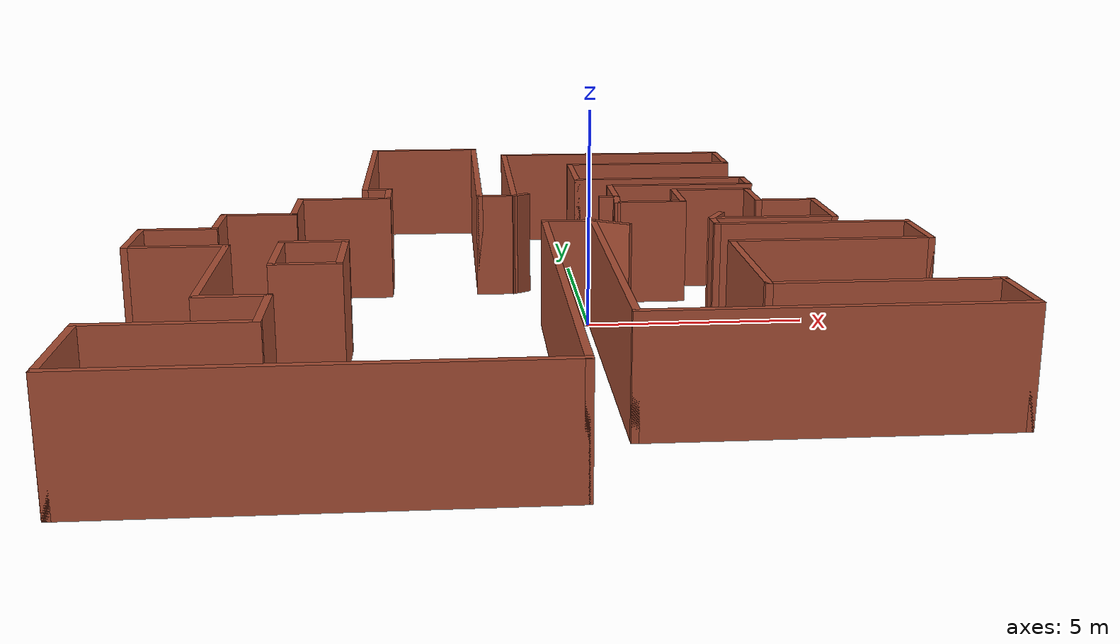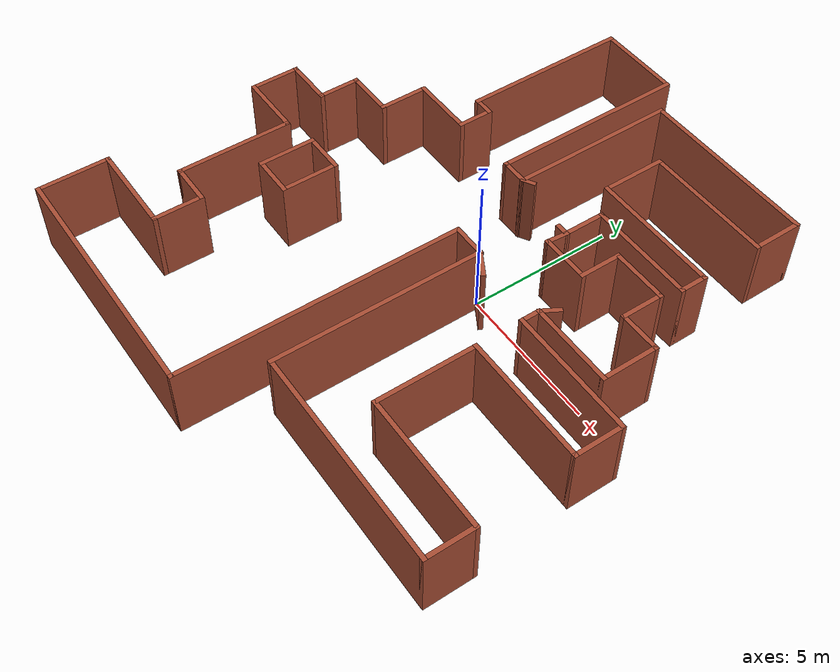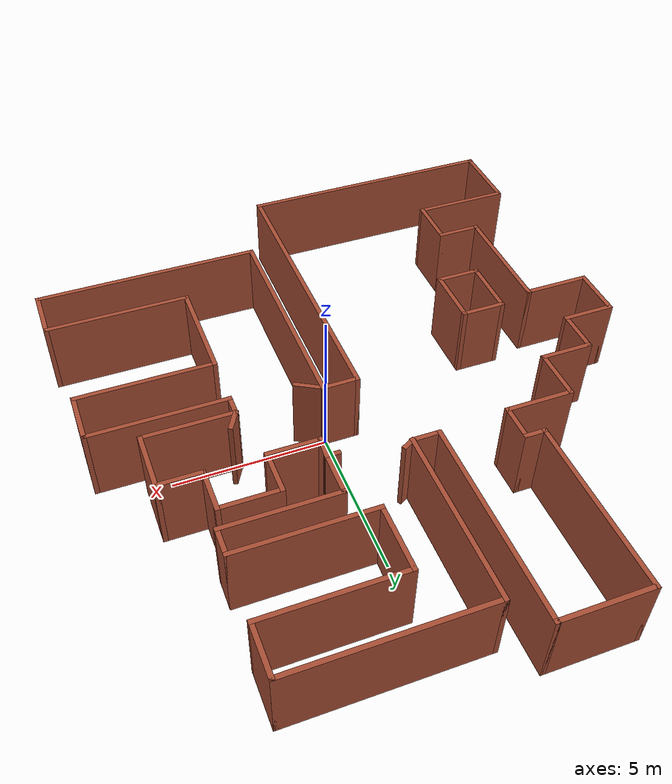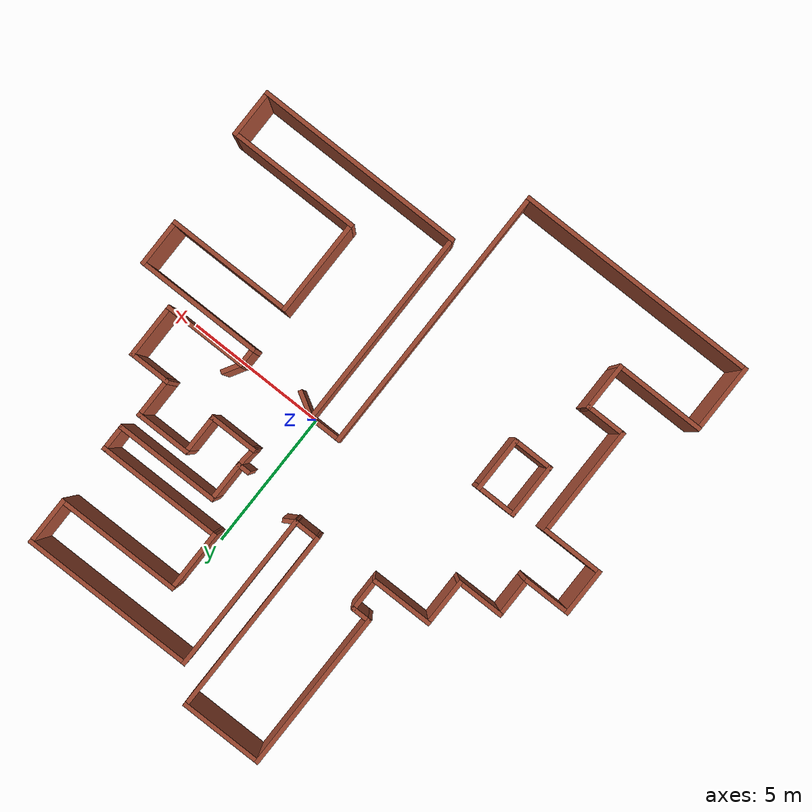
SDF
<?xml version='1.0'?>
<sdf version='1.6'>
  <model name='map_121'>
    <pose frame=''>-1.27001 -0.112349 0 0 -0 0</pose>
    <link name='Wall_0'>
      <collision name='Wall_0_Collision'>
        <geometry>
          <box>
            <size>5.75 0.15 2.5</size>
          </box>
        </geometry>
        <pose frame=''>0 0 1.25 0 -0 0</pose>
      </collision>
      <visual name='Wall_0_Visual'>
        <pose frame=''>0 0 1.25 0 -0 0</pose>
        <geometry>
          <box>
            <size>5.75 0.15 2.5</size>
          </box>
        </geometry>
        <material>
          <script>
            <uri>file://media/materials/scripts/gazebo.material</uri>
            <name>Gazebo/Bricks</name>
          </script>
          <ambient>1 1 1 1</ambient>
        </material>
        <meta>
          <layer>0</layer>
        </meta>
      </visual>
      <pose frame=''>-4 6.725 0 0 -0 -1.5708</pose>
    </link>
    <link name='Wall_1'>
      <collision name='Wall_1_Collision'>
        <geometry>
          <box>
            <size>0.75 0.15 2.5</size>
          </box>
        </geometry>
        <pose frame=''>0 0 1.25 0 -0 0</pose>
      </collision>
      <visual name='Wall_1_Visual'>
        <pose frame=''>0 0 1.25 0 -0 0</pose>
        <geometry>
          <box>
            <size>0.75 0.15 2.5</size>
          </box>
        </geometry>
        <material>
          <script>
            <uri>file://media/materials/scripts/gazebo.material</uri>
            <name>Gazebo/Bricks</name>
          </script>
          <ambient>1 1 1 1</ambient>
        </material>
        <meta>
          <layer>0</layer>
        </meta>
      </visual>
      <pose frame=''>-3.7 3.925 0 0 -0 0</pose>
    </link>
    <link name='Wall_10'>
      <collision name='Wall_10_Collision'>
        <geometry>
          <box>
            <size>1.75 0.15 2.5</size>
          </box>
        </geometry>
        <pose frame=''>0 0 1.25 0 -0 0</pose>
      </collision>
      <visual name='Wall_10_Visual'>
        <pose frame=''>0 0 1.25 0 -0 0</pose>
        <geometry>
          <box>
            <size>1.75 0.15 2.5</size>
          </box>
        </geometry>
        <material>
          <script>
            <uri>file://media/materials/scripts/gazebo.material</uri>
            <name>Gazebo/Bricks</name>
          </script>
          <ambient>1 1 1 1</ambient>
        </material>
        <meta>
          <layer>0</layer>
        </meta>
      </visual>
      <pose frame=''>-8.7 -0.925 0 0 -0 -1.5708</pose>
    </link>
    <link name='Wall_11'>
      <collision name='Wall_11_Collision'>
        <geometry>
          <box>
            <size>2.25 0.15 2.5</size>
          </box>
        </geometry>
        <pose frame=''>0 0 1.25 0 -0 0</pose>
      </collision>
      <visual name='Wall_11_Visual'>
        <pose frame=''>0 0 1.25 0 -0 0</pose>
        <geometry>
          <box>
            <size>2.25 0.15 2.5</size>
          </box>
        </geometry>
        <material>
          <script>
            <uri>file://media/materials/scripts/gazebo.material</uri>
            <name>Gazebo/Bricks</name>
          </script>
          <ambient>1 1 1 1</ambient>
        </material>
        <meta>
          <layer>0</layer>
        </meta>
      </visual>
      <pose frame=''>-7.65 -1.725 0 0 -0 0</pose>
    </link>
    <link name='Wall_12'>
      <collision name='Wall_12_Collision'>
        <geometry>
          <box>
            <size>4 0.15 2.5</size>
          </box>
        </geometry>
        <pose frame=''>0 0 1.25 0 -0 0</pose>
      </collision>
      <visual name='Wall_12_Visual'>
        <pose frame=''>0 0 1.25 0 -0 0</pose>
        <geometry>
          <box>
            <size>4 0.15 2.5</size>
          </box>
        </geometry>
        <material>
          <script>
            <uri>file://media/materials/scripts/gazebo.material</uri>
            <name>Gazebo/Bricks</name>
          </script>
          <ambient>1 1 1 1</ambient>
        </material>
        <meta>
          <layer>0</layer>
        </meta>
      </visual>
      <pose frame=''>-6.6 -3.65 0 0 -0 -1.5708</pose>
    </link>
    <link name='Wall_13'>
      <collision name='Wall_13_Collision'>
        <geometry>
          <box>
            <size>1.5 0.15 2.5</size>
          </box>
        </geometry>
        <pose frame=''>0 0 1.25 0 -0 0</pose>
      </collision>
      <visual name='Wall_13_Visual'>
        <pose frame=''>0 0 1.25 0 -0 0</pose>
        <geometry>
          <box>
            <size>1.5 0.15 2.5</size>
          </box>
        </geometry>
        <material>
          <script>
            <uri>file://media/materials/scripts/gazebo.material</uri>
            <name>Gazebo/Bricks</name>
          </script>
          <ambient>1 1 1 1</ambient>
        </material>
        <meta>
          <layer>0</layer>
        </meta>
      </visual>
      <pose frame=''>-5.925 -5.575 0 0 -0 0</pose>
    </link>
    <link name='Wall_14'>
      <collision name='Wall_14_Collision'>
        <geometry>
          <box>
            <size>1.75 0.15 2.5</size>
          </box>
        </geometry>
        <pose frame=''>0 0 1.25 0 -0 0</pose>
      </collision>
      <visual name='Wall_14_Visual'>
        <pose frame=''>0 0 1.25 0 -0 0</pose>
        <geometry>
          <box>
            <size>1.75 0.15 2.5</size>
          </box>
        </geometry>
        <material>
          <script>
            <uri>file://media/materials/scripts/gazebo.material</uri>
            <name>Gazebo/Bricks</name>
          </script>
          <ambient>1 1 1 1</ambient>
        </material>
        <meta>
          <layer>0</layer>
        </meta>
      </visual>
      <pose frame=''>-5.25 -6.375 0 0 -0 -1.5708</pose>
    </link>
    <link name='Wall_15'>
      <collision name='Wall_15_Collision'>
        <geometry>
          <box>
            <size>3.25 0.15 2.5</size>
          </box>
        </geometry>
        <pose frame=''>0 0 1.25 0 -0 0</pose>
      </collision>
      <visual name='Wall_15_Visual'>
        <pose frame=''>0 0 1.25 0 -0 0</pose>
        <geometry>
          <box>
            <size>3.25 0.15 2.5</size>
          </box>
        </geometry>
        <material>
          <script>
            <uri>file://media/materials/scripts/gazebo.material</uri>
            <name>Gazebo/Bricks</name>
          </script>
          <ambient>1 1 1 1</ambient>
        </material>
        <meta>
          <layer>0</layer>
        </meta>
      </visual>
      <pose frame=''>-6.8 -7.175 0 0 -0 3.14159</pose>
    </link>
    <link name='Wall_16'>
      <collision name='Wall_16_Collision'>
        <geometry>
          <box>
            <size>2.5 0.15 2.5</size>
          </box>
        </geometry>
        <pose frame=''>0 0 1.25 0 -0 0</pose>
      </collision>
      <visual name='Wall_16_Visual'>
        <pose frame=''>0 0 1.25 0 -0 0</pose>
        <geometry>
          <box>
            <size>2.5 0.15 2.5</size>
          </box>
        </geometry>
        <material>
          <script>
            <uri>file://media/materials/scripts/gazebo.material</uri>
            <name>Gazebo/Bricks</name>
          </script>
          <ambient>1 1 1 1</ambient>
        </material>
        <meta>
          <layer>0</layer>
        </meta>
      </visual>
      <pose frame=''>-8.35 -8.35 0 0 -0 -1.5708</pose>
    </link>
    <link name='Wall_17'>
      <collision name='Wall_17_Collision'>
        <geometry>
          <box>
            <size>8.75 0.15 2.5</size>
          </box>
        </geometry>
        <pose frame=''>0 0 1.25 0 -0 0</pose>
      </collision>
      <visual name='Wall_17_Visual'>
        <pose frame=''>0 0 1.25 0 -0 0</pose>
        <geometry>
          <box>
            <size>8.75 0.15 2.5</size>
          </box>
        </geometry>
        <material>
          <script>
            <uri>file://media/materials/scripts/gazebo.material</uri>
            <name>Gazebo/Bricks</name>
          </script>
          <ambient>1 1 1 1</ambient>
        </material>
        <meta>
          <layer>0</layer>
        </meta>
      </visual>
      <pose frame=''>-4.05 -9.525 0 0 -0 0</pose>
    </link>
    <link name='Wall_2'>
      <collision name='Wall_2_Collision'>
        <geometry>
          <box>
            <size>1.25 0.15 2.5</size>
          </box>
        </geometry>
        <pose frame=''>0 0 1.25 0 -0 0</pose>
      </collision>
      <visual name='Wall_2_Visual'>
        <pose frame=''>0 0 1.25 0 -0 0</pose>
        <geometry>
          <box>
            <size>1.25 0.15 2.5</size>
          </box>
        </geometry>
        <material>
          <script>
            <uri>file://media/materials/scripts/gazebo.material</uri>
            <name>Gazebo/Bricks</name>
          </script>
          <ambient>1 1 1 1</ambient>
        </material>
        <meta>
          <layer>0</layer>
        </meta>
      </visual>
      <pose frame=''>-3.4 3.375 0 0 -0 -1.5708</pose>
    </link>
    <link name='Wall_21'>
      <collision name='Wall_21_Collision'>
        <geometry>
          <box>
            <size>7.5 0.15 2.5</size>
          </box>
        </geometry>
        <pose frame=''>0 0 1.25 0 -0 0</pose>
      </collision>
      <visual name='Wall_21_Visual'>
        <pose frame=''>0 0 1.25 0 -0 0</pose>
        <geometry>
          <box>
            <size>7.5 0.15 2.5</size>
          </box>
        </geometry>
        <material>
          <script>
            <uri>file://media/materials/scripts/gazebo.material</uri>
            <name>Gazebo/Bricks</name>
          </script>
          <ambient>1 1 1 1</ambient>
        </material>
        <meta>
          <layer>0</layer>
        </meta>
      </visual>
      <pose frame=''>5.025 -7.025 0 0 -0 0</pose>
    </link>
    <link name='Wall_3'>
      <collision name='Wall_3_Collision'>
        <geometry>
          <box>
            <size>2.25 0.15 2.5</size>
          </box>
        </geometry>
        <pose frame=''>0 0 1.25 0 -0 0</pose>
      </collision>
      <visual name='Wall_3_Visual'>
        <pose frame=''>0 0 1.25 0 -0 0</pose>
        <geometry>
          <box>
            <size>2.25 0.15 2.5</size>
          </box>
        </geometry>
        <material>
          <script>
            <uri>file://media/materials/scripts/gazebo.material</uri>
            <name>Gazebo/Bricks</name>
          </script>
          <ambient>1 1 1 1</ambient>
        </material>
        <meta>
          <layer>0</layer>
        </meta>
      </visual>
      <pose frame=''>-4.45 2.825 0 0 -0 3.14159</pose>
    </link>
    <link name='Wall_31'>
      <collision name='Wall_31_Collision'>
        <geometry>
          <box>
            <size>1.75 0.15 2.5</size>
          </box>
        </geometry>
        <pose frame=''>0 0 1.25 0 -0 0</pose>
      </collision>
      <visual name='Wall_31_Visual'>
        <pose frame=''>0 0 1.25 0 -0 0</pose>
        <geometry>
          <box>
            <size>1.75 0.15 2.5</size>
          </box>
        </geometry>
        <material>
          <script>
            <uri>file://media/materials/scripts/gazebo.material</uri>
            <name>Gazebo/Bricks</name>
          </script>
          <ambient>1 1 1 1</ambient>
        </material>
        <meta>
          <layer>0</layer>
        </meta>
      </visual>
      <pose frame=''>8.7 -6.225 0 0 -0 1.5708</pose>
    </link>
    <link name='Wall_32'>
      <collision name='Wall_32_Collision'>
        <geometry>
          <box>
            <size>4.75 0.15 2.5</size>
          </box>
        </geometry>
        <pose frame=''>0 0 1.25 0 -0 0</pose>
      </collision>
      <visual name='Wall_32_Visual'>
        <pose frame=''>0 0 1.25 0 -0 0</pose>
        <geometry>
          <box>
            <size>4.75 0.15 2.5</size>
          </box>
        </geometry>
        <material>
          <script>
            <uri>file://media/materials/scripts/gazebo.material</uri>
            <name>Gazebo/Bricks</name>
          </script>
          <ambient>1 1 1 1</ambient>
        </material>
        <meta>
          <layer>0</layer>
        </meta>
      </visual>
      <pose frame=''>6.4 -5.425 0 0 -0 3.14159</pose>
    </link>
    <link name='Wall_33'>
      <collision name='Wall_33_Collision'>
        <geometry>
          <box>
            <size>3.5 0.15 2.5</size>
          </box>
        </geometry>
        <pose frame=''>0 0 1.25 0 -0 0</pose>
      </collision>
      <visual name='Wall_33_Visual'>
        <pose frame=''>0 0 1.25 0 -0 0</pose>
        <geometry>
          <box>
            <size>3.5 0.15 2.5</size>
          </box>
        </geometry>
        <material>
          <script>
            <uri>file://media/materials/scripts/gazebo.material</uri>
            <name>Gazebo/Bricks</name>
          </script>
          <ambient>1 1 1 1</ambient>
        </material>
        <meta>
          <layer>0</layer>
        </meta>
      </visual>
      <pose frame=''>4.1 -3.75 0 0 -0 1.5708</pose>
    </link>
    <link name='Wall_34'>
      <collision name='Wall_34_Collision'>
        <geometry>
          <box>
            <size>4.5 0.15 2.5</size>
          </box>
        </geometry>
        <pose frame=''>0 0 1.25 0 -0 0</pose>
      </collision>
      <visual name='Wall_34_Visual'>
        <pose frame=''>0 0 1.25 0 -0 0</pose>
        <geometry>
          <box>
            <size>4.5 0.15 2.5</size>
          </box>
        </geometry>
        <material>
          <script>
            <uri>file://media/materials/scripts/gazebo.material</uri>
            <name>Gazebo/Bricks</name>
          </script>
          <ambient>1 1 1 1</ambient>
        </material>
        <meta>
          <layer>0</layer>
        </meta>
      </visual>
      <pose frame=''>6.275 -2.075 0 0 -0 0</pose>
    </link>
    <link name='Wall_35'>
      <collision name='Wall_35_Collision'>
        <geometry>
          <box>
            <size>1.75 0.15 2.5</size>
          </box>
        </geometry>
        <pose frame=''>0 0 1.25 0 -0 0</pose>
      </collision>
      <visual name='Wall_35_Visual'>
        <pose frame=''>0 0 1.25 0 -0 0</pose>
        <geometry>
          <box>
            <size>1.75 0.15 2.5</size>
          </box>
        </geometry>
        <material>
          <script>
            <uri>file://media/materials/scripts/gazebo.material</uri>
            <name>Gazebo/Bricks</name>
          </script>
          <ambient>1 1 1 1</ambient>
        </material>
        <meta>
          <layer>0</layer>
        </meta>
      </visual>
      <pose frame=''>8.45 -1.275 0 0 -0 1.5708</pose>
    </link>
    <link name='Wall_36'>
      <collision name='Wall_36_Collision'>
        <geometry>
          <box>
            <size>4.5 0.15 2.5</size>
          </box>
        </geometry>
        <pose frame=''>0 0 1.25 0 -0 0</pose>
      </collision>
      <visual name='Wall_36_Visual'>
        <pose frame=''>0 0 1.25 0 -0 0</pose>
        <geometry>
          <box>
            <size>4.5 0.15 2.5</size>
          </box>
        </geometry>
        <material>
          <script>
            <uri>file://media/materials/scripts/gazebo.material</uri>
            <name>Gazebo/Bricks</name>
          </script>
          <ambient>1 1 1 1</ambient>
        </material>
        <meta>
          <layer>0</layer>
        </meta>
      </visual>
      <pose frame=''>6.275 -0.475 0 0 -0 3.14159</pose>
    </link>
    <link name='Wall_37'>
      <collision name='Wall_37_Collision'>
        <geometry>
          <box>
            <size>0.75 0.15 2.5</size>
          </box>
        </geometry>
        <pose frame=''>0 0 1.25 0 -0 0</pose>
      </collision>
      <visual name='Wall_37_Visual'>
        <pose frame=''>0 0 1.25 0 -0 0</pose>
        <geometry>
          <box>
            <size>0.75 0.15 2.5</size>
          </box>
        </geometry>
        <material>
          <script>
            <uri>file://media/materials/scripts/gazebo.material</uri>
            <name>Gazebo/Bricks</name>
          </script>
          <ambient>1 1 1 1</ambient>
        </material>
        <meta>
          <layer>0</layer>
        </meta>
      </visual>
      <pose frame=''>4.1 -0.175 0 0 -0 1.5708</pose>
    </link>
    <link name='Wall_38'>
      <collision name='Wall_38_Collision'>
        <geometry>
          <box>
            <size>3 0.15 2.5</size>
          </box>
        </geometry>
        <pose frame=''>0 0 1.25 0 -0 0</pose>
      </collision>
      <visual name='Wall_38_Visual'>
        <pose frame=''>0 0 1.25 0 -0 0</pose>
        <geometry>
          <box>
            <size>3 0.15 2.5</size>
          </box>
        </geometry>
        <material>
          <script>
            <uri>file://media/materials/scripts/gazebo.material</uri>
            <name>Gazebo/Bricks</name>
          </script>
          <ambient>1 1 1 1</ambient>
        </material>
        <meta>
          <layer>0</layer>
        </meta>
      </visual>
      <pose frame=''>5.525 0.125 0 0 -0 0</pose>
    </link>
    <link name='Wall_39'>
      <collision name='Wall_39_Collision'>
        <geometry>
          <box>
            <size>2 0.15 2.5</size>
          </box>
        </geometry>
        <pose frame=''>0 0 1.25 0 -0 0</pose>
      </collision>
      <visual name='Wall_39_Visual'>
        <pose frame=''>0 0 1.25 0 -0 0</pose>
        <geometry>
          <box>
            <size>2 0.15 2.5</size>
          </box>
        </geometry>
        <material>
          <script>
            <uri>file://media/materials/scripts/gazebo.material</uri>
            <name>Gazebo/Bricks</name>
          </script>
          <ambient>1 1 1 1</ambient>
        </material>
        <meta>
          <layer>0</layer>
        </meta>
      </visual>
      <pose frame=''>6.95 1.05 0 0 -0 1.5708</pose>
    </link>
    <link name='Wall_4'>
      <collision name='Wall_4_Collision'>
        <geometry>
          <box>
            <size>1.75 0.15 2.5</size>
          </box>
        </geometry>
        <pose frame=''>0 0 1.25 0 -0 0</pose>
      </collision>
      <visual name='Wall_4_Visual'>
        <pose frame=''>0 0 1.25 0 -0 0</pose>
        <geometry>
          <box>
            <size>1.75 0.15 2.5</size>
          </box>
        </geometry>
        <material>
          <script>
            <uri>file://media/materials/scripts/gazebo.material</uri>
            <name>Gazebo/Bricks</name>
          </script>
          <ambient>1 1 1 1</ambient>
        </material>
        <meta>
          <layer>0</layer>
        </meta>
      </visual>
      <pose frame=''>-5.5 2.025 0 0 -0 -1.5708</pose>
    </link>
    <link name='Wall_40'>
      <collision name='Wall_40_Collision'>
        <geometry>
          <box>
            <size>1.5 0.15 2.5</size>
          </box>
        </geometry>
        <pose frame=''>0 0 1.25 0 -0 0</pose>
      </collision>
      <visual name='Wall_40_Visual'>
        <pose frame=''>0 0 1.25 0 -0 0</pose>
        <geometry>
          <box>
            <size>1.5 0.15 2.5</size>
          </box>
        </geometry>
        <material>
          <script>
            <uri>file://media/materials/scripts/gazebo.material</uri>
            <name>Gazebo/Bricks</name>
          </script>
          <ambient>1 1 1 1</ambient>
        </material>
        <meta>
          <layer>0</layer>
        </meta>
      </visual>
      <pose frame=''>6.275 1.975 0 0 -0 3.14159</pose>
    </link>
    <link name='Wall_41'>
      <collision name='Wall_41_Collision'>
        <geometry>
          <box>
            <size>1.5 0.15 2.5</size>
          </box>
        </geometry>
        <pose frame=''>0 0 1.25 0 -0 0</pose>
      </collision>
      <visual name='Wall_41_Visual'>
        <pose frame=''>0 0 1.25 0 -0 0</pose>
        <geometry>
          <box>
            <size>1.5 0.15 2.5</size>
          </box>
        </geometry>
        <material>
          <script>
            <uri>file://media/materials/scripts/gazebo.material</uri>
            <name>Gazebo/Bricks</name>
          </script>
          <ambient>1 1 1 1</ambient>
        </material>
        <meta>
          <layer>0</layer>
        </meta>
      </visual>
      <pose frame=''>5.6 2.65 0 0 -0 1.5708</pose>
    </link>
    <link name='Wall_42'>
      <collision name='Wall_42_Collision'>
        <geometry>
          <box>
            <size>2 0.15 2.5</size>
          </box>
        </geometry>
        <pose frame=''>0 0 1.25 0 -0 0</pose>
      </collision>
      <visual name='Wall_42_Visual'>
        <pose frame=''>0 0 1.25 0 -0 0</pose>
        <geometry>
          <box>
            <size>2 0.15 2.5</size>
          </box>
        </geometry>
        <material>
          <script>
            <uri>file://media/materials/scripts/gazebo.material</uri>
            <name>Gazebo/Bricks</name>
          </script>
          <ambient>1 1 1 1</ambient>
        </material>
        <meta>
          <layer>0</layer>
        </meta>
      </visual>
      <pose frame=''>4.675 3.325 0 0 -0 3.14159</pose>
    </link>
    <link name='Wall_43'>
      <collision name='Wall_43_Collision'>
        <geometry>
          <box>
            <size>1.5 0.15 2.5</size>
          </box>
        </geometry>
        <pose frame=''>0 0 1.25 0 -0 0</pose>
      </collision>
      <visual name='Wall_43_Visual'>
        <pose frame=''>0 0 1.25 0 -0 0</pose>
        <geometry>
          <box>
            <size>1.5 0.15 2.5</size>
          </box>
        </geometry>
        <material>
          <script>
            <uri>file://media/materials/scripts/gazebo.material</uri>
            <name>Gazebo/Bricks</name>
          </script>
          <ambient>1 1 1 1</ambient>
        </material>
        <meta>
          <layer>0</layer>
        </meta>
      </visual>
      <pose frame=''>3.75 2.65 0 0 -0 -1.5708</pose>
    </link>
    <link name='Wall_45'>
      <collision name='Wall_45_Collision'>
        <geometry>
          <box>
            <size>9.75 0.15 2.5</size>
          </box>
        </geometry>
        <pose frame=''>0 0 1.25 0 -0 0</pose>
      </collision>
      <visual name='Wall_45_Visual'>
        <pose frame=''>0 0 1.25 0 -0 0</pose>
        <geometry>
          <box>
            <size>9.75 0.15 2.5</size>
          </box>
        </geometry>
        <material>
          <script>
            <uri>file://media/materials/scripts/gazebo.material</uri>
            <name>Gazebo/Bricks</name>
          </script>
          <ambient>1 1 1 1</ambient>
        </material>
        <meta>
          <layer>0</layer>
        </meta>
      </visual>
      <pose frame=''>0.25 -4.725 0 0 -0 1.5708</pose>
    </link>
    <link name='Wall_46'>
      <collision name='Wall_46_Collision'>
        <geometry>
          <box>
            <size>1.25 0.15 2.5</size>
          </box>
        </geometry>
        <pose frame=''>0 0 1.25 0 -0 0</pose>
      </collision>
      <visual name='Wall_46_Visual'>
        <pose frame=''>0 0 1.25 0 -0 0</pose>
        <geometry>
          <box>
            <size>1.25 0.15 2.5</size>
          </box>
        </geometry>
        <material>
          <script>
            <uri>file://media/materials/scripts/gazebo.material</uri>
            <name>Gazebo/Bricks</name>
          </script>
          <ambient>1 1 1 1</ambient>
        </material>
        <meta>
          <layer>0</layer>
        </meta>
      </visual>
      <pose frame=''>0.8 0.075 0 0 -0 0</pose>
    </link>
    <link name='Wall_48'>
      <collision name='Wall_48_Collision'>
        <geometry>
          <box>
            <size>7.25 0.15 2.5</size>
          </box>
        </geometry>
        <pose frame=''>0 0 1.25 0 -0 0</pose>
      </collision>
      <visual name='Wall_48_Visual'>
        <pose frame=''>0 0 1.25 0 -0 0</pose>
        <geometry>
          <box>
            <size>7.25 0.15 2.5</size>
          </box>
        </geometry>
        <material>
          <script>
            <uri>file://media/materials/scripts/gazebo.material</uri>
            <name>Gazebo/Bricks</name>
          </script>
          <ambient>1 1 1 1</ambient>
        </material>
        <meta>
          <layer>0</layer>
        </meta>
      </visual>
      <pose frame=''>1.35 -3.475 0 0 -0 1.5708</pose>
    </link>
    <link name='Wall_50'>
      <collision name='Wall_50_Collision'>
        <geometry>
          <box>
            <size>3 0.15 2.5</size>
          </box>
        </geometry>
        <pose frame=''>0 0 1.25 0 -0 0</pose>
      </collision>
      <visual name='Wall_50_Visual'>
        <pose frame=''>0 0 1.25 0 -0 0</pose>
        <geometry>
          <box>
            <size>3 0.15 2.5</size>
          </box>
        </geometry>
        <material>
          <script>
            <uri>file://media/materials/scripts/gazebo.material</uri>
            <name>Gazebo/Bricks</name>
          </script>
          <ambient>1 1 1 1</ambient>
        </material>
        <meta>
          <layer>0</layer>
        </meta>
      </visual>
      <pose frame=''>-2.575 9.525 0 0 -0 0</pose>
    </link>
    <link name='Wall_51'>
      <collision name='Wall_51_Collision'>
        <geometry>
          <box>
            <size>6.75 0.15 2.5</size>
          </box>
        </geometry>
        <pose frame=''>0 0 1.25 0 -0 0</pose>
      </collision>
      <visual name='Wall_51_Visual'>
        <pose frame=''>0 0 1.25 0 -0 0</pose>
        <geometry>
          <box>
            <size>6.75 0.15 2.5</size>
          </box>
        </geometry>
        <material>
          <script>
            <uri>file://media/materials/scripts/gazebo.material</uri>
            <name>Gazebo/Bricks</name>
          </script>
          <ambient>1 1 1 1</ambient>
        </material>
        <meta>
          <layer>0</layer>
        </meta>
      </visual>
      <pose frame=''>-1.15 6.225 0 0 -0 -1.5708</pose>
    </link>
    <link name='Wall_52'>
      <collision name='Wall_52_Collision'>
        <geometry>
          <box>
            <size>1 0.15 2.5</size>
          </box>
        </geometry>
        <pose frame=''>0 0 1.25 0 -0 0</pose>
      </collision>
      <visual name='Wall_52_Visual'>
        <pose frame=''>0 0 1.25 0 -0 0</pose>
        <geometry>
          <box>
            <size>1 0.15 2.5</size>
          </box>
        </geometry>
        <material>
          <script>
            <uri>file://media/materials/scripts/gazebo.material</uri>
            <name>Gazebo/Bricks</name>
          </script>
          <ambient>1 1 1 1</ambient>
        </material>
        <meta>
          <layer>0</layer>
        </meta>
      </visual>
      <pose frame=''>-0.725 2.925 0 0 -0 0</pose>
    </link>
    <link name='Wall_53'>
      <collision name='Wall_53_Collision'>
        <geometry>
          <box>
            <size>5.75 0.15 2.5</size>
          </box>
        </geometry>
        <pose frame=''>0 0 1.25 0 -0 0</pose>
      </collision>
      <visual name='Wall_53_Visual'>
        <pose frame=''>0 0 1.25 0 -0 0</pose>
        <geometry>
          <box>
            <size>5.75 0.15 2.5</size>
          </box>
        </geometry>
        <material>
          <script>
            <uri>file://media/materials/scripts/gazebo.material</uri>
            <name>Gazebo/Bricks</name>
          </script>
          <ambient>1 1 1 1</ambient>
        </material>
        <meta>
          <layer>0</layer>
        </meta>
      </visual>
      <pose frame=''>-0.3 5.725 0 0 -0 1.5708</pose>
    </link>
    <link name='Wall_54'>
      <collision name='Wall_54_Collision'>
        <geometry>
          <box>
            <size>6.25 0.15 2.5</size>
          </box>
        </geometry>
        <pose frame=''>0 0 1.25 0 -0 0</pose>
      </collision>
      <visual name='Wall_54_Visual'>
        <pose frame=''>0 0 1.25 0 -0 0</pose>
        <geometry>
          <box>
            <size>6.25 0.15 2.5</size>
          </box>
        </geometry>
        <material>
          <script>
            <uri>file://media/materials/scripts/gazebo.material</uri>
            <name>Gazebo/Bricks</name>
          </script>
          <ambient>1 1 1 1</ambient>
        </material>
        <meta>
          <layer>0</layer>
        </meta>
      </visual>
      <pose frame=''>2.75 8.525 0 0 -0 0</pose>
    </link>
    <link name='Wall_57'>
      <collision name='Wall_57_Collision'>
        <geometry>
          <box>
            <size>1.75 0.15 2.5</size>
          </box>
        </geometry>
        <pose frame=''>0 0 1.25 0 -0 0</pose>
      </collision>
      <visual name='Wall_57_Visual'>
        <pose frame=''>0 0 1.25 0 -0 0</pose>
        <geometry>
          <box>
            <size>1.75 0.15 2.5</size>
          </box>
        </geometry>
        <material>
          <script>
            <uri>file://media/materials/scripts/gazebo.material</uri>
            <name>Gazebo/Bricks</name>
          </script>
          <ambient>1 1 1 1</ambient>
        </material>
        <meta>
          <layer>0</layer>
        </meta>
      </visual>
      <pose frame=''>5.8 7.725 0 0 -0 -1.5708</pose>
    </link>
    <link name='Wall_58'>
      <collision name='Wall_58_Collision'>
        <geometry>
          <box>
            <size>4.5 0.15 2.5</size>
          </box>
        </geometry>
        <pose frame=''>0 0 1.25 0 -0 0</pose>
      </collision>
      <visual name='Wall_58_Visual'>
        <pose frame=''>0 0 1.25 0 -0 0</pose>
        <geometry>
          <box>
            <size>4.5 0.15 2.5</size>
          </box>
        </geometry>
        <material>
          <script>
            <uri>file://media/materials/scripts/gazebo.material</uri>
            <name>Gazebo/Bricks</name>
          </script>
          <ambient>1 1 1 1</ambient>
        </material>
        <meta>
          <layer>0</layer>
        </meta>
      </visual>
      <pose frame=''>3.625 6.925 0 0 -0 3.14159</pose>
    </link>
    <link name='Wall_59'>
      <collision name='Wall_59_Collision'>
        <geometry>
          <box>
            <size>2.25 0.15 2.5</size>
          </box>
        </geometry>
        <pose frame=''>0 0 1.25 0 -0 0</pose>
      </collision>
      <visual name='Wall_59_Visual'>
        <pose frame=''>0 0 1.25 0 -0 0</pose>
        <geometry>
          <box>
            <size>2.25 0.15 2.5</size>
          </box>
        </geometry>
        <material>
          <script>
            <uri>file://media/materials/scripts/gazebo.material</uri>
            <name>Gazebo/Bricks</name>
          </script>
          <ambient>1 1 1 1</ambient>
        </material>
        <meta>
          <layer>0</layer>
        </meta>
      </visual>
      <pose frame=''>1.45 5.875 0 0 -0 -1.5708</pose>
    </link>
    <link name='Wall_60'>
      <collision name='Wall_60_Collision'>
        <geometry>
          <box>
            <size>4.5 0.15 2.5</size>
          </box>
        </geometry>
        <pose frame=''>0 0 1.25 0 -0 0</pose>
      </collision>
      <visual name='Wall_60_Visual'>
        <pose frame=''>0 0 1.25 0 -0 0</pose>
        <geometry>
          <box>
            <size>4.5 0.15 2.5</size>
          </box>
        </geometry>
        <material>
          <script>
            <uri>file://media/materials/scripts/gazebo.material</uri>
            <name>Gazebo/Bricks</name>
          </script>
          <ambient>1 1 1 1</ambient>
        </material>
        <meta>
          <layer>0</layer>
        </meta>
      </visual>
      <pose frame=''>3.625 4.825 0 0 -0 0</pose>
    </link>
    <link name='Wall_61'>
      <collision name='Wall_61_Collision'>
        <geometry>
          <box>
            <size>1 0.15 2.5</size>
          </box>
        </geometry>
        <pose frame=''>0 0 1.25 0 -0 0</pose>
      </collision>
      <visual name='Wall_61_Visual'>
        <pose frame=''>0 0 1.25 0 -0 0</pose>
        <geometry>
          <box>
            <size>1 0.15 2.5</size>
          </box>
        </geometry>
        <material>
          <script>
            <uri>file://media/materials/scripts/gazebo.material</uri>
            <name>Gazebo/Bricks</name>
          </script>
          <ambient>1 1 1 1</ambient>
        </material>
        <meta>
          <layer>0</layer>
        </meta>
      </visual>
      <pose frame=''>5.8 4.4 0 0 -0 -1.5708</pose>
    </link>
    <link name='Wall_65'>
      <collision name='Wall_65_Collision'>
        <geometry>
          <box>
            <size>3.75 0.15 2.5</size>
          </box>
        </geometry>
        <pose frame=''>0 0 1.25 0 -0 0</pose>
      </collision>
      <visual name='Wall_65_Visual'>
        <pose frame=''>0 0 1.25 0 -0 0</pose>
        <geometry>
          <box>
            <size>3.75 0.15 2.5</size>
          </box>
        </geometry>
        <material>
          <script>
            <uri>file://media/materials/scripts/gazebo.material</uri>
            <name>Gazebo/Bricks</name>
          </script>
          <ambient>1 1 1 1</ambient>
        </material>
        <meta>
          <layer>0</layer>
        </meta>
      </visual>
      <pose frame=''>4 3.975 0 0 -0 3.14159</pose>
    </link>
    <link name='Wall_66'>
      <collision name='Wall_66_Collision'>
        <geometry>
          <box>
            <size>1.5 0.15 2.5</size>
          </box>
        </geometry>
        <pose frame=''>0 0 1.25 0 -0 0</pose>
      </collision>
      <visual name='Wall_66_Visual'>
        <pose frame=''>0 0 1.25 0 -0 0</pose>
        <geometry>
          <box>
            <size>1.5 0.15 2.5</size>
          </box>
        </geometry>
        <material>
          <script>
            <uri>file://media/materials/scripts/gazebo.material</uri>
            <name>Gazebo/Bricks</name>
          </script>
          <ambient>1 1 1 1</ambient>
        </material>
        <meta>
          <layer>0</layer>
        </meta>
      </visual>
      <pose frame=''>2.2 3.3 0 0 -0 -1.5708</pose>
    </link>
    <link name='Wall_69'>
      <collision name='Wall_69_Collision'>
        <geometry>
          <box>
            <size>1 0.15 2.5</size>
          </box>
        </geometry>
        <pose frame=''>0 0 1.25 0 -0 0</pose>
      </collision>
      <visual name='Wall_69_Visual'>
        <pose frame=''>0 0 1.25 0 -0 0</pose>
        <geometry>
          <box>
            <size>1 0.15 2.5</size>
          </box>
        </geometry>
        <material>
          <script>
            <uri>file://media/materials/scripts/gazebo.material</uri>
            <name>Gazebo/Bricks</name>
          </script>
          <ambient>1 1 1 1</ambient>
        </material>
        <meta>
          <layer>0</layer>
        </meta>
      </visual>
      <pose frame=''>1.71806 -0.1375 0 0 -0 -0.523599</pose>
    </link>
    <link name='Wall_7'>
      <collision name='Wall_7_Collision'>
        <geometry>
          <box>
            <size>1.75 0.15 2.5</size>
          </box>
        </geometry>
        <pose frame=''>0 0 1.25 0 -0 0</pose>
      </collision>
      <visual name='Wall_7_Visual'>
        <pose frame=''>0 0 1.25 0 -0 0</pose>
        <geometry>
          <box>
            <size>1.75 0.15 2.5</size>
          </box>
        </geometry>
        <material>
          <script>
            <uri>file://media/materials/scripts/gazebo.material</uri>
            <name>Gazebo/Bricks</name>
          </script>
          <ambient>1 1 1 1</ambient>
        </material>
        <meta>
          <layer>0</layer>
        </meta>
      </visual>
      <pose frame=''>-6.3 1.225 0 0 -0 3.14159</pose>
    </link>
    <link name='Wall_71'>
      <collision name='Wall_71_Collision'>
        <geometry>
          <box>
            <size>0.75 0.15 2.5</size>
          </box>
        </geometry>
        <pose frame=''>0 0 1.25 0 -0 0</pose>
      </collision>
      <visual name='Wall_71_Visual'>
        <pose frame=''>0 0 1.25 0 -0 0</pose>
        <geometry>
          <box>
            <size>0.75 0.15 2.5</size>
          </box>
        </geometry>
        <material>
          <script>
            <uri>file://media/materials/scripts/gazebo.material</uri>
            <name>Gazebo/Bricks</name>
          </script>
          <ambient>1 1 1 1</ambient>
        </material>
        <meta>
          <layer>0</layer>
        </meta>
      </visual>
      <pose frame=''>4.25 0.384808 0 0 -0 1.0472</pose>
    </link>
    <link name='Wall_73'>
      <collision name='Wall_73_Collision'>
        <geometry>
          <box>
            <size>0.5 0.15 2.5</size>
          </box>
        </geometry>
        <pose frame=''>0 0 1.25 0 -0 0</pose>
      </collision>
      <visual name='Wall_73_Visual'>
        <pose frame=''>0 0 1.25 0 -0 0</pose>
        <geometry>
          <box>
            <size>0.5 0.15 2.5</size>
          </box>
        </geometry>
        <material>
          <script>
            <uri>file://media/materials/scripts/gazebo.material</uri>
            <name>Gazebo/Bricks</name>
          </script>
          <ambient>1 1 1 1</ambient>
        </material>
        <meta>
          <layer>0</layer>
        </meta>
      </visual>
      <pose frame=''>-0.148446 3.0125 0 0 -0 0.523599</pose>
    </link>
    <link name='Wall_75'>
      <collision name='Wall_75_Collision'>
        <geometry>
          <box>
            <size>0.5 0.15 2.5</size>
          </box>
        </geometry>
        <pose frame=''>0 0 1.25 0 -0 0</pose>
      </collision>
      <visual name='Wall_75_Visual'>
        <pose frame=''>0 0 1.25 0 -0 0</pose>
        <geometry>
          <box>
            <size>0.5 0.15 2.5</size>
          </box>
        </geometry>
        <material>
          <script>
            <uri>file://media/materials/scripts/gazebo.material</uri>
            <name>Gazebo/Bricks</name>
          </script>
          <ambient>1 1 1 1</ambient>
        </material>
        <meta>
          <layer>0</layer>
        </meta>
      </visual>
      <pose frame=''>2.025 2.625 0 0 -0 3.14159</pose>
    </link>
    <link name='Wall_78'>
      <collision name='Wall_78_Collision'>
        <geometry>
          <box>
            <size>1.5 0.15 2.5</size>
          </box>
        </geometry>
        <pose frame=''>0 0 1.25 0 -0 0</pose>
      </collision>
      <visual name='Wall_78_Visual'>
        <pose frame=''>0 0 1.25 0 -0 0</pose>
        <geometry>
          <box>
            <size>1.5 0.15 2.5</size>
          </box>
        </geometry>
        <material>
          <script>
            <uri>file://media/materials/scripts/gazebo.material</uri>
            <name>Gazebo/Bricks</name>
          </script>
          <ambient>1 1 1 1</ambient>
        </material>
        <meta>
          <layer>0</layer>
        </meta>
      </visual>
      <pose frame=''>-4.79951 -3.32964 0 0 -0 0</pose>
    </link>
    <link name='Wall_79'>
      <collision name='Wall_79_Collision'>
        <geometry>
          <box>
            <size>2 0.15 2.5</size>
          </box>
        </geometry>
        <pose frame=''>0 0 1.25 0 -0 0</pose>
      </collision>
      <visual name='Wall_79_Visual'>
        <pose frame=''>0 0 1.25 0 -0 0</pose>
        <geometry>
          <box>
            <size>2 0.15 2.5</size>
          </box>
        </geometry>
        <material>
          <script>
            <uri>file://media/materials/scripts/gazebo.material</uri>
            <name>Gazebo/Bricks</name>
          </script>
          <ambient>1 1 1 1</ambient>
        </material>
        <meta>
          <layer>0</layer>
        </meta>
      </visual>
      <pose frame=''>-4.12451 -2.40463 0 0 -0 1.5708</pose>
    </link>
    <link name='Wall_8'>
      <collision name='Wall_8_Collision'>
        <geometry>
          <box>
            <size>1.5 0.15 2.5</size>
          </box>
        </geometry>
        <pose frame=''>0 0 1.25 0 -0 0</pose>
      </collision>
      <visual name='Wall_8_Visual'>
        <pose frame=''>0 0 1.25 0 -0 0</pose>
        <geometry>
          <box>
            <size>1.5 0.15 2.5</size>
          </box>
        </geometry>
        <material>
          <script>
            <uri>file://media/materials/scripts/gazebo.material</uri>
            <name>Gazebo/Bricks</name>
          </script>
          <ambient>1 1 1 1</ambient>
        </material>
        <meta>
          <layer>0</layer>
        </meta>
      </visual>
      <pose frame=''>-7.1 0.55 0 0 -0 -1.5708</pose>
    </link>
    <link name='Wall_80'>
      <collision name='Wall_80_Collision'>
        <geometry>
          <box>
            <size>1.5 0.15 2.5</size>
          </box>
        </geometry>
        <pose frame=''>0 0 1.25 0 -0 0</pose>
      </collision>
      <visual name='Wall_80_Visual'>
        <pose frame=''>0 0 1.25 0 -0 0</pose>
        <geometry>
          <box>
            <size>1.5 0.15 2.5</size>
          </box>
        </geometry>
        <material>
          <script>
            <uri>file://media/materials/scripts/gazebo.material</uri>
            <name>Gazebo/Bricks</name>
          </script>
          <ambient>1 1 1 1</ambient>
        </material>
        <meta>
          <layer>0</layer>
        </meta>
      </visual>
      <pose frame=''>-4.79951 -1.47964 0 0 -0 3.14159</pose>
    </link>
    <link name='Wall_82'>
      <collision name='Wall_82_Collision'>
        <geometry>
          <box>
            <size>2 0.15 2.5</size>
          </box>
        </geometry>
        <pose frame=''>0 0 1.25 0 -0 0</pose>
      </collision>
      <visual name='Wall_82_Visual'>
        <pose frame=''>0 0 1.25 0 -0 0</pose>
        <geometry>
          <box>
            <size>2 0.15 2.5</size>
          </box>
        </geometry>
        <material>
          <script>
            <uri>file://media/materials/scripts/gazebo.material</uri>
            <name>Gazebo/Bricks</name>
          </script>
          <ambient>1 1 1 1</ambient>
        </material>
        <meta>
          <layer>0</layer>
        </meta>
      </visual>
      <pose frame=''>-5.47451 -2.40463 0 0 -0 -1.5708</pose>
    </link>
    <link name='Wall_84'>
      <collision name='Wall_84_Collision'>
        <geometry>
          <box>
            <size>1.75 0.15 2.5</size>
          </box>
        </geometry>
        <pose frame=''>0 0 1.25 0 -0 0</pose>
      </collision>
      <visual name='Wall_84_Visual'>
        <pose frame=''>0 0 1.25 0 -0 0</pose>
        <geometry>
          <box>
            <size>1.75 0.15 2.5</size>
          </box>
        </geometry>
        <material>
          <script>
            <uri>file://media/materials/scripts/gazebo.material</uri>
            <name>Gazebo/Bricks</name>
          </script>
          <ambient>1 1 1 1</ambient>
        </material>
        <meta>
          <layer>0</layer>
        </meta>
      </visual>
      <pose frame=''>2.95 1.975 0 0 -0 3.14159</pose>
    </link>
    <link name='Wall_85'>
      <collision name='Wall_85_Collision'>
        <geometry>
          <box>
            <size>0.80192 0.15 2.5</size>
          </box>
        </geometry>
        <pose frame=''>0 0 1.25 0 -0 0</pose>
      </collision>
      <visual name='Wall_85_Visual'>
        <pose frame=''>0 0 1.25 0 -0 0</pose>
        <geometry>
          <box>
            <size>0.80192 0.15 2.5</size>
          </box>
        </geometry>
        <material>
          <script>
            <uri>file://media/materials/scripts/gazebo.material</uri>
            <name>Gazebo/Bricks</name>
          </script>
          <ambient>1 1 1 1</ambient>
        </material>
        <meta>
          <layer>0</layer>
        </meta>
      </visual>
      <pose frame=''>2.175 2.3 0 0 -0 1.49402</pose>
    </link>
    <link name='Wall_9'>
      <collision name='Wall_9_Collision'>
        <geometry>
          <box>
            <size>1.75 0.15 2.5</size>
          </box>
        </geometry>
        <pose frame=''>0 0 1.25 0 -0 0</pose>
      </collision>
      <visual name='Wall_9_Visual'>
        <pose frame=''>0 0 1.25 0 -0 0</pose>
        <geometry>
          <box>
            <size>1.75 0.15 2.5</size>
          </box>
        </geometry>
        <material>
          <script>
            <uri>file://media/materials/scripts/gazebo.material</uri>
            <name>Gazebo/Bricks</name>
          </script>
          <ambient>1 1 1 1</ambient>
        </material>
        <meta>
          <layer>0</layer>
        </meta>
      </visual>
      <pose frame=''>-7.9 -0.125 0 0 -0 3.14159</pose>
    </link>
    <static>1</static>
  </model>
</sdf>
